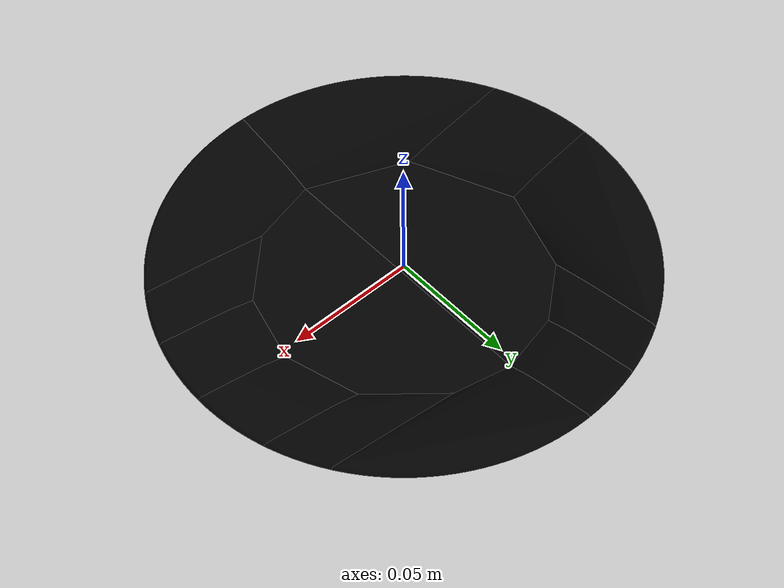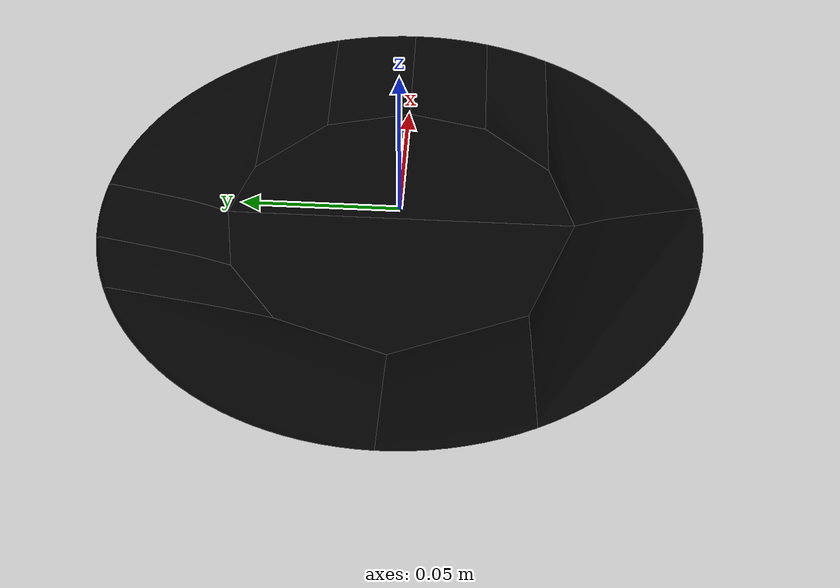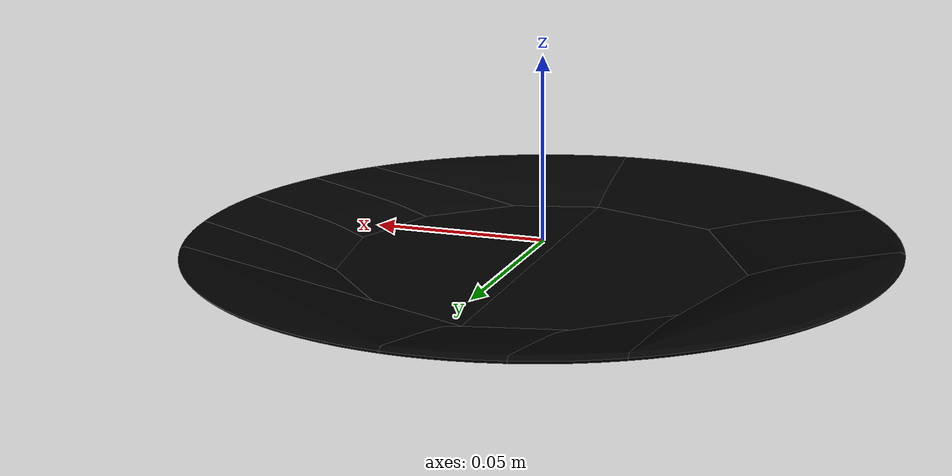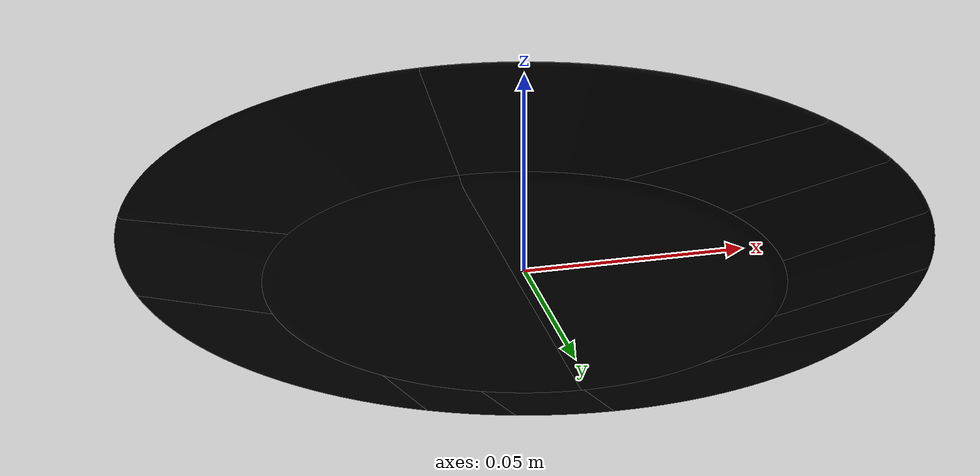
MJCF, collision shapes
<mujoco model="plate_54">
  <asset>
    <mesh file="visual/model_normalized_0.obj" name="model_normalized_0_vis" scale="0.185 0.185 0.185" refquat="1.0 0.0 0.0 0.0" />
    <material name="Material.392" specular="0.5" shininess="0.359999993" rgba="0.800000 0.800000 0.800000 1.0" />
    <mesh file="collision/model_collision_0.obj" name="model_collision_0" scale="0.185 0.185 0.185" refquat="1.0 0.0 0.0 0.0" />
    <mesh file="collision/model_collision_1.obj" name="model_collision_1" scale="0.185 0.185 0.185" refquat="1.0 0.0 0.0 0.0" />
    <mesh file="collision/model_collision_2.obj" name="model_collision_2" scale="0.185 0.185 0.185" refquat="1.0 0.0 0.0 0.0" />
    <mesh file="collision/model_collision_3.obj" name="model_collision_3" scale="0.185 0.185 0.185" refquat="1.0 0.0 0.0 0.0" />
    <mesh file="collision/model_collision_4.obj" name="model_collision_4" scale="0.185 0.185 0.185" refquat="1.0 0.0 0.0 0.0" />
    <mesh file="collision/model_collision_5.obj" name="model_collision_5" scale="0.185 0.185 0.185" refquat="1.0 0.0 0.0 0.0" />
    <mesh file="collision/model_collision_6.obj" name="model_collision_6" scale="0.185 0.185 0.185" refquat="1.0 0.0 0.0 0.0" />
    <mesh file="collision/model_collision_7.obj" name="model_collision_7" scale="0.185 0.185 0.185" refquat="1.0 0.0 0.0 0.0" />
    <mesh file="collision/model_collision_8.obj" name="model_collision_8" scale="0.185 0.185 0.185" refquat="1.0 0.0 0.0 0.0" />
    <mesh file="collision/model_collision_9.obj" name="model_collision_9" scale="0.185 0.185 0.185" refquat="1.0 0.0 0.0 0.0" />
    <mesh file="collision/model_collision_10.obj" name="model_collision_10" scale="0.185 0.185 0.185" refquat="1.0 0.0 0.0 0.0" />
    <mesh file="collision/model_collision_11.obj" name="model_collision_11" scale="0.185 0.185 0.185" refquat="1.0 0.0 0.0 0.0" />
    <mesh file="collision/model_collision_12.obj" name="model_collision_12" scale="0.185 0.185 0.185" refquat="1.0 0.0 0.0 0.0" />
  </asset>
  <default>
    <default class="region">
      <geom group="1" conaffinity="0" contype="0" rgba="0 1 0 0" />
    </default>
  </default>
  <worldbody>
    <body>
      <body name="object">
        <geom density="0" type="mesh" mesh="model_normalized_0_vis" conaffinity="0" contype="0" group="2" material="Material.392" mass="0.18" />
        <geom class="region" name="reg_bbox" type="box" pos="-0.0002503327499999995 9.249999995131208e-10 -9.250000000335379e-09" size="0.09091674964999999 0.0909167663 0.005545608099999999" />
        <geom density="0" friction="1.2 0.1 0.001" type="mesh" group="3" rgba="0 0 0 0" mesh="model_collision_0"  condim="4"/>        <geom density="0" friction="1.2 0.1 0.001" type="mesh" group="3" rgba="0 0 0 0" mesh="model_collision_1"  condim="4"/>        <geom density="0" friction="1.2 0.1 0.001" type="mesh" group="3" rgba="0 0 0 0" mesh="model_collision_2"  condim="4"/>        <geom density="0" friction="1.2 0.1 0.001" type="mesh" group="3" rgba="0 0 0 0" mesh="model_collision_3"  condim="4"/>        <geom density="0" friction="1.2 0.1 0.001" type="mesh" group="3" rgba="0 0 0 0" mesh="model_collision_4"  condim="4"/>        <geom density="0" friction="1.2 0.1 0.001" type="mesh" group="3" rgba="0 0 0 0" mesh="model_collision_5"  condim="4"/>        <geom density="0" friction="1.2 0.1 0.001" type="mesh" group="3" rgba="0 0 0 0" mesh="model_collision_6"  condim="4"/>        <geom density="0" friction="1.2 0.1 0.001" type="mesh" group="3" rgba="0 0 0 0" mesh="model_collision_7"  condim="4"/>        <geom density="0" friction="1.2 0.1 0.001" type="mesh" group="3" rgba="0 0 0 0" mesh="model_collision_8"  condim="4"/>        <geom density="0" friction="1.2 0.1 0.001" type="mesh" group="3" rgba="0 0 0 0" mesh="model_collision_9"  condim="4"/>        <geom density="0" friction="1.2 0.1 0.001" type="mesh" group="3" rgba="0 0 0 0" mesh="model_collision_10"  condim="4"/>        <geom density="0" friction="1.2 0.1 0.001" type="mesh" group="3" rgba="0 0 0 0" mesh="model_collision_11"  condim="4"/>        <geom density="0" friction="1.2 0.1 0.001" type="mesh" group="3" rgba="0 0 0 0" mesh="model_collision_12"  condim="4"/>      </body>
    </body>
  </worldbody>
</mujoco>
